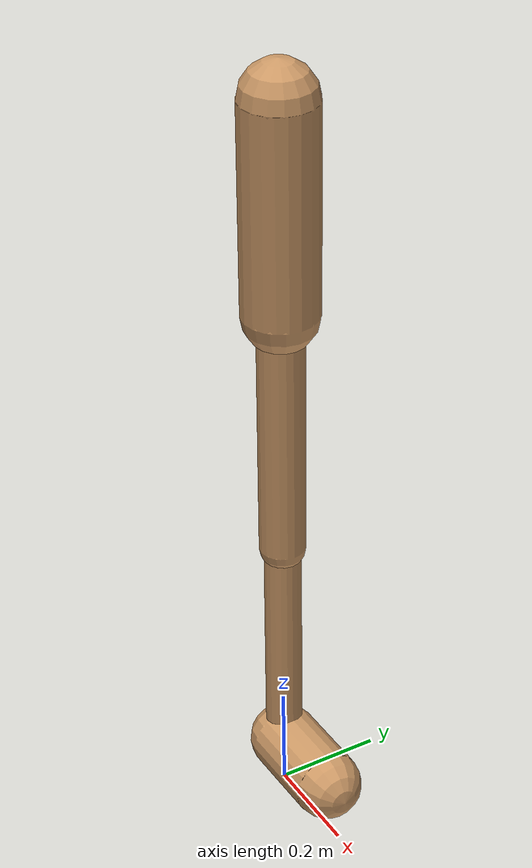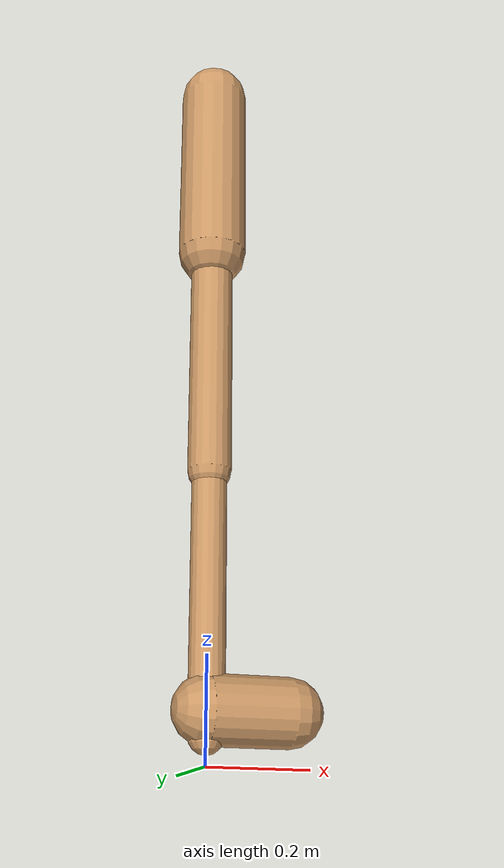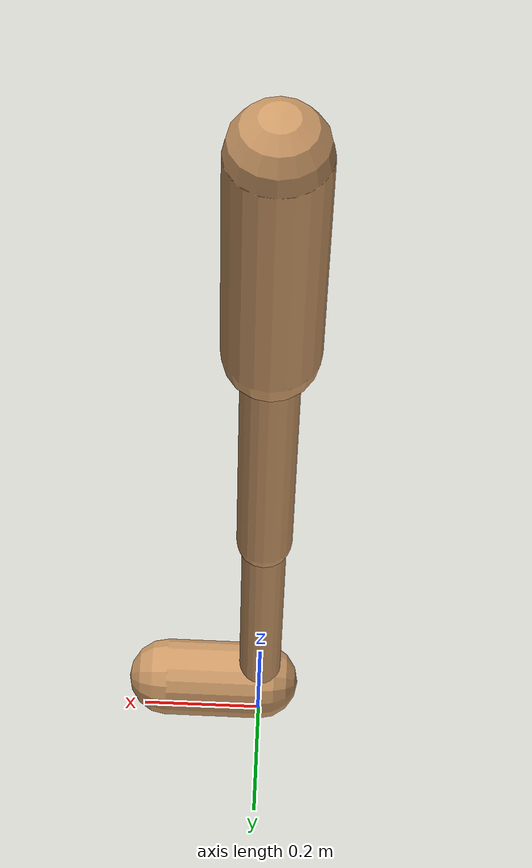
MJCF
<mujoco model="walker2d">
  <compiler angle="degree" coordinate="global" inertiafromgeom="true" />
  <default>
    <joint armature="0.01" damping=".1" limited="true" />
    <geom conaffinity="0" condim="3" contype="1" density="1000" friction="0.8 .1 .1" rgba="0.8 0.6 .4 1" />
  </default>
  <option integrator="RK4" timestep="0.002" />
  <worldbody>

    <body name="torso" pos="0 0 0.08722031735747993">
      <joint armature="0" axis="1 0 0" damping="0" limited="false" name="ignorex" pos="0 0 0" stiffness="0" type="slide" />
      <joint armature="0" axis="0 0 1" damping="0" limited="false" name="ignorez" pos="0 0 0" ref="1.25" stiffness="0" type="slide" />
      <joint armature="0" axis="0 1 0" damping="0" limited="false" name="ignorey" pos="0 0 0" stiffness="0" type="hinge" />
      <geom fromto="0 0 1.45 0 0 1.05" name="torso_geom" size="0.07119564988856948" type="capsule" />
      <body name="thigh">
        <joint axis="0 -1 0" name="thigh_joint" pos="0 0 1.05" range="-150 0" type="hinge" />
        <geom fromto="0.0 0.0 1.05 0.0 0.0 0.5586851128306674" name="thigh_geom" size="0.04361314545151962" type="capsule" />
        <body name="leg" pos="0.0 0.0 -0.041314887169332626">
          <joint axis="0 -1 0" name="leg_joint" pos="0 0 0.6" range="-150 0" type="hinge" />
          <geom fromto="0.0 0.0 0.6 0.0 0.0 0.05409456981185268" name="leg_geom" size="0.0348905163612157" type="capsule" />
          <body name="foot" pos="0.0 0.0 -0.04590543018814733">
            <joint axis="0 -1 0" name="foot_joint" pos="0 0 0.1" range="-45 45" type="hinge" />
            <geom fromto="0.0 0.0 0.1 0.15874028809320928 0.0 0.1" name="foot_geom" size="0.06582200005932018" type="capsule" />
          </body>
        </body>
      </body>

      <body name="thigh_left">
        <joint axis="0 -1 0" name="thigh_left_joint" pos="0 0 1.05" range="-150 0" type="hinge" />
        <geom fromto="0.0 0.0 1.05 0.0 0.0 0.5586851128306674" name="thigh_left_geom" rgba=".7 .3 .6 1" size="0.04361314545151962" type="capsule" />
        <body name="leg_left" pos="0.0 0.0 -0.041314887169332626">
          <joint axis="0 -1 0" name="leg_left_joint" pos="0 0 0.6" range="-150 0" type="hinge" />
          <geom fromto="0.0 0.0 0.6 0.0 0.0 0.05409456981185268" name="leg_left_geom" rgba=".7 .3 .6 1" size="0.0348905163612157" type="capsule" />
          <body name="foot_left" pos="0.0 0.0 -0.04590543018814733">
            <joint axis="0 -1 0" name="foot_left_joint" pos="0 0 0.1" range="-45 45" type="hinge" />
            <geom fromto="0.0 0.0 0.1 0.15874028809320928 0.0 0.1" name="foot_left_geom" rgba=".7 .3 .6 1" size="0.06582200005932018" type="capsule" />
          </body>
        </body>
      </body>
    </body>
  </worldbody>
  <actuator>

    <motor ctrllimited="true" ctrlrange="-1.0 1.0" gear="100" joint="thigh_joint" />
    <motor ctrllimited="true" ctrlrange="-1.0 1.0" gear="100" joint="leg_joint" />
    <motor ctrllimited="true" ctrlrange="-1.0 1.0" gear="100" joint="foot_joint" />
    <motor ctrllimited="true" ctrlrange="-1.0 1.0" gear="100" joint="thigh_left_joint" />
    <motor ctrllimited="true" ctrlrange="-1.0 1.0" gear="100" joint="leg_left_joint" />
    <motor ctrllimited="true" ctrlrange="-1.0 1.0" gear="100" joint="foot_left_joint" />

  </actuator>
</mujoco>
